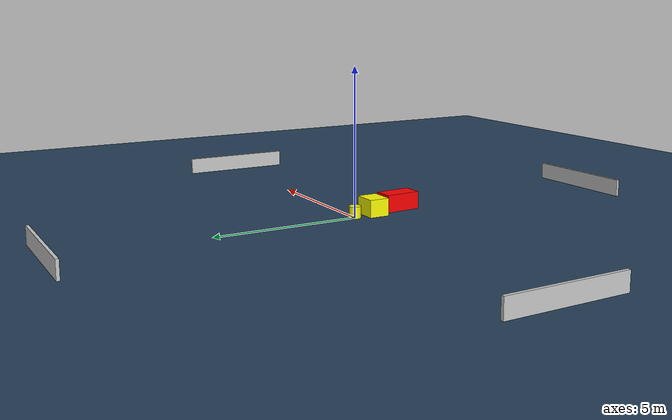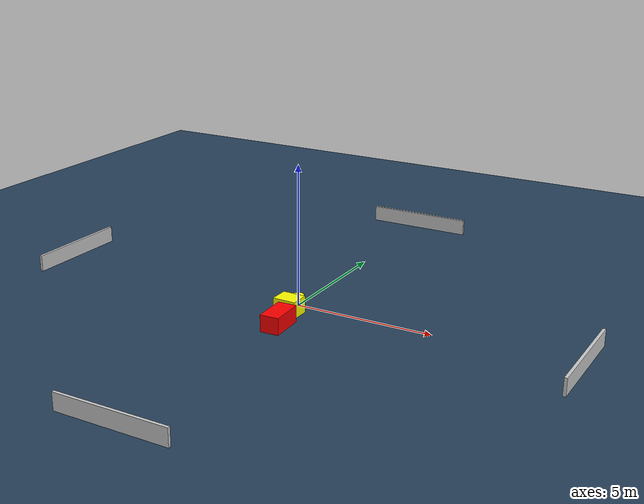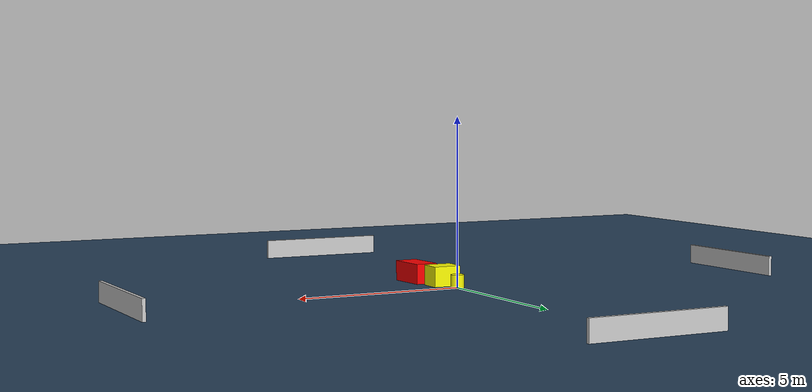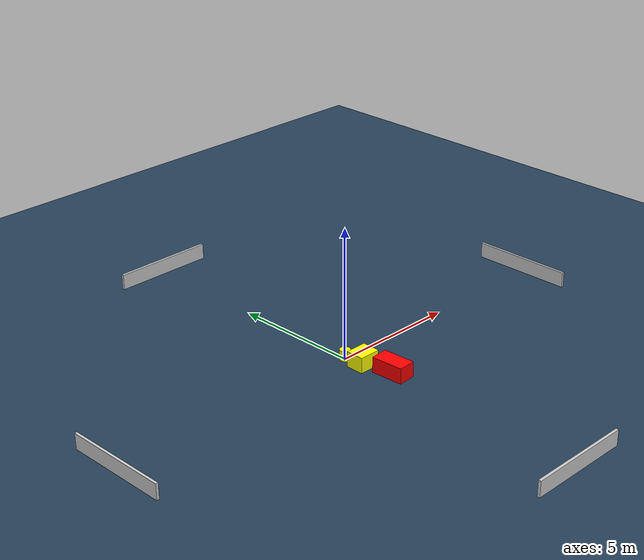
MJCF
<?xml version="1.0" ?>
<mujoco model="generated_environment">
  <option timestep="0.01" integrator="RK4" cone="elliptic"/>
  <default>
    <geom density="1"/>
  </default>
  <asset>
    <texture builtin="gradient" height="3072" name="skybox" rgb1="0.3 0.5 0.7" rgb2="0 0 0" type="skybox" width="512"/>
    <texture builtin="checker" height="300" name="groundplane" rgb1="0.2 0.3 0.4" rgb2="0.1 0.2 0.3" type="2d" width="300"/>
    <material name="groundplane" reflectance="0.2" texrepeat="5 5" texture="groundplane"/>
  </asset>
  <worldbody>
    <light dir="0 0 -1" directional="true" pos="0 0 1.5"/>
    <geom condim="3" friction="0.5 0.005 0.001" material="groundplane" name="floor" pos="0 0 0" size="0 0 0.05" type="plane"/>
    <body name="walls">
      <geom name="wall_1" condim="4" pos="-10.0 0.0 0.3" rgba="0.800000011920929 0.800000011920929 0.800000011920929 1.0" size="0.05 2.0 0.3" type="box"/>
      <geom name="wall_2" condim="4" pos="10.0 0.0 0.3" rgba="0.800000011920929 0.800000011920929 0.800000011920929 1.0" size="0.05 2.0 0.3" type="box"/>
      <geom name="wall_3" condim="4" pos="0.0 -10.0 0.3" rgba="0.800000011920929 0.800000011920929 0.800000011920929 1.0" size="2.0 0.05 0.3" type="box"/>
      <geom name="wall_4" condim="4" pos="0.0 10.0 0.3" rgba="0.800000011920929 0.800000011920929 0.800000011920929 1.0" size="2.0 0.05 0.3" type="box"/>
    </body>
    <body name="robot">
      <joint name="joint_x" type="slide" pos="0 0 0" axis="1 0 0"/>
      <joint name="joint_y" type="slide" pos="0 0 0" axis="0 1 0"/>
      <geom name="robot" type="cylinder" pos="0.0 0.0 0.2" size="0.2 0.2 0.0" mass="5.0" friction="1.0 0.005 0.0001" condim="4" rgba="1.0 1.0 0.0 1.0"/>
    </body>
    <body name="obstacle_1_movable">
      <geom name="obstacle_1_movable" condim="4" pos="0.09401852463326048 -0.7697316022211608 0.3" euler="0 0 359.32917184521125" friction="0.0 0.005 0.001" rgba="1.0 1.0 0.0 1.0" size="0.41739469658710804 0.347429913838441 0.3" type="box" mass="0.1"/>
      <joint type="free"/>
    </body>
    <body name="obstacle_2_static">
      <geom name="obstacle_2_static" condim="4" pos="0.37180530998467826 -1.9268937456369166 0.3" euler="0 0 272.9779732750756" friction="0.0 0.005 0.001" rgba="1.0 0.0 0.0 1.0" size="0.6279888081466627 0.33737288325518516 0.3" type="box"/>
    </body>
  </worldbody>
  <actuator>
    <motor name="actuator_x" joint="joint_x" gear="1" ctrlrange="-1 1"/>
    <motor name="actuator_y" joint="joint_y" gear="1" ctrlrange="-1 1"/>
  </actuator>
</mujoco>
